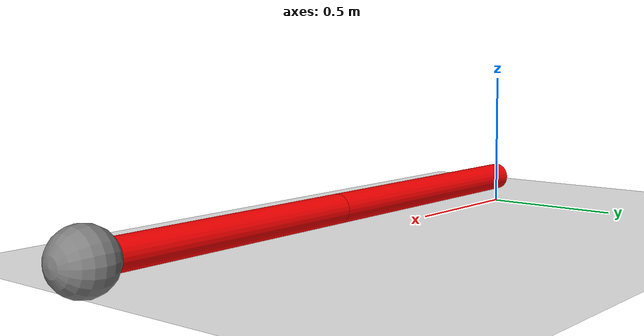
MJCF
<mujoco>
	<asset>
		<material name="red"   rgba="1 0 0 1"/>
		<material name="green" rgba="0 1 0 1"/>
		<material name="blue"  rgba="0 0 1 1"/>
		<material name="white" rgba="1 1 1 1"/>
		<material name="gray"  rgba=".5 .5 .5 1"/>
	</asset>

    <option collision="predefined"/>

    <worldbody>
        <light diffuse=".5 .5 .5" pos="0 0 10" dir="0 0 -1"/>
        <geom type="plane" size="2 2 0.1" rgba="1 1 1 1"/>

        <body name="link 0" pos="0.5 0 0.1" euler="0 90 0">
            <joint name="joint 0" type="hinge" axis="-1 0 0" pos="0 0 -0.5"/>
            <geom name="geom link 0" type="cylinder" size="0.05 0.5" material="red"/>
            <body name="link 1" pos="0 0 1.0" euler="0 0 0">
                <joint name="joint 1" type="hinge" axis="-1 0 0" pos="0 0 -0.5"/>
                <geom name="geom link 1" type="cylinder" size="0.05 0.5" material="red"/>
                <site name="tip" size="0.1" pos="0 0 0.5"/>
            </body>
        </body>

        <body name="link 0 shade" pos="0.5 0 0.1" euler="0 90 0">
            <joint name="joint 0 shade" type="hinge" axis="-1 0 0" pos="0 0 -0.5"/>
            <geom name="geom link 0 shade" type="cylinder" size="0.05 0.5" material="green"/>
            <body name="link 1 shade" pos="0 0 1.0" euler="0 0 0">
                <joint name="joint 1 shade" type="hinge" axis="-1 0 0" pos="0 0 -0.5"/>
                <geom name="geom link 1 shade" type="cylinder" size="0.05 0.5" material="green"/>
            </body>
        </body>

        <body name="obstacle 0">
            <geom name="geom obstacle 0" type="sphere" size="0.01" pos="0.3 0.0 0.1" material="blue"/>
        </body>

    </worldbody>

    <contact>
        <pair geom1="geom link 0" geom2="geom obstacle 0"/>
        <pair geom1="geom link 1" geom2="geom obstacle 0"/>
    </contact>

    <sensor>
      <framepos objtype="site" objname="tip"/>
    </sensor>
</mujoco>
